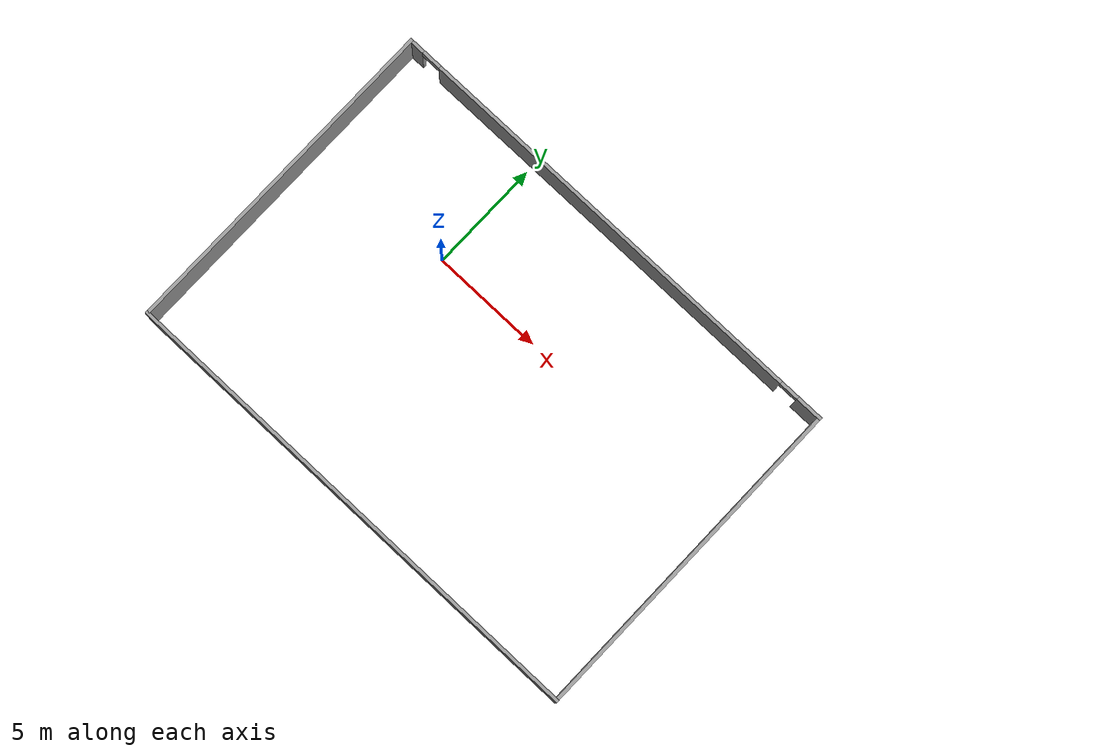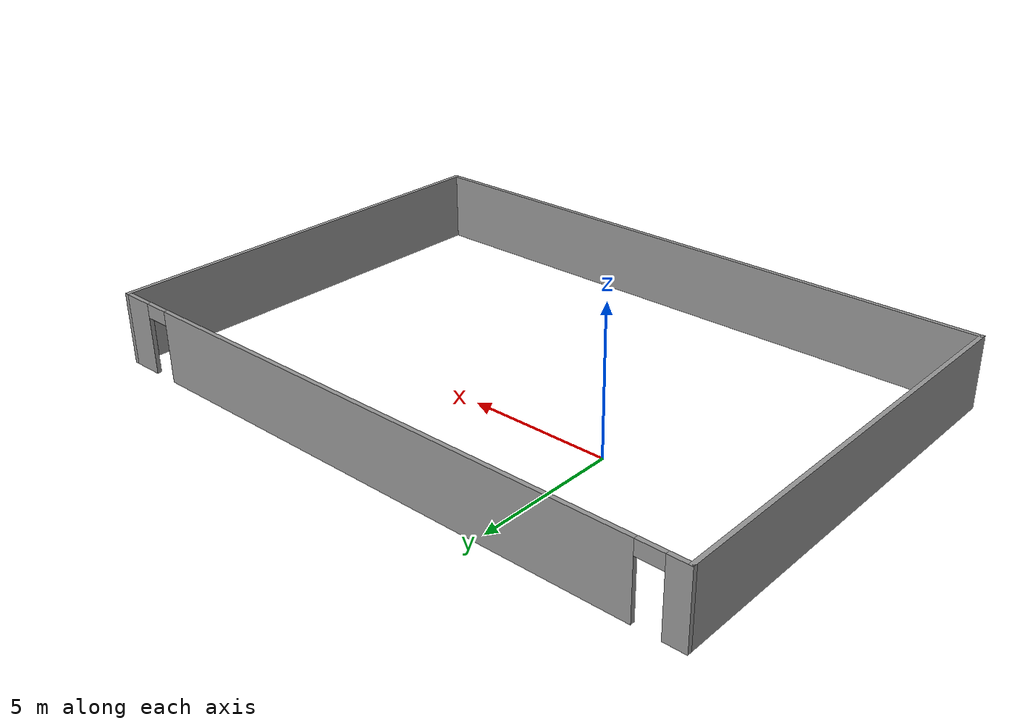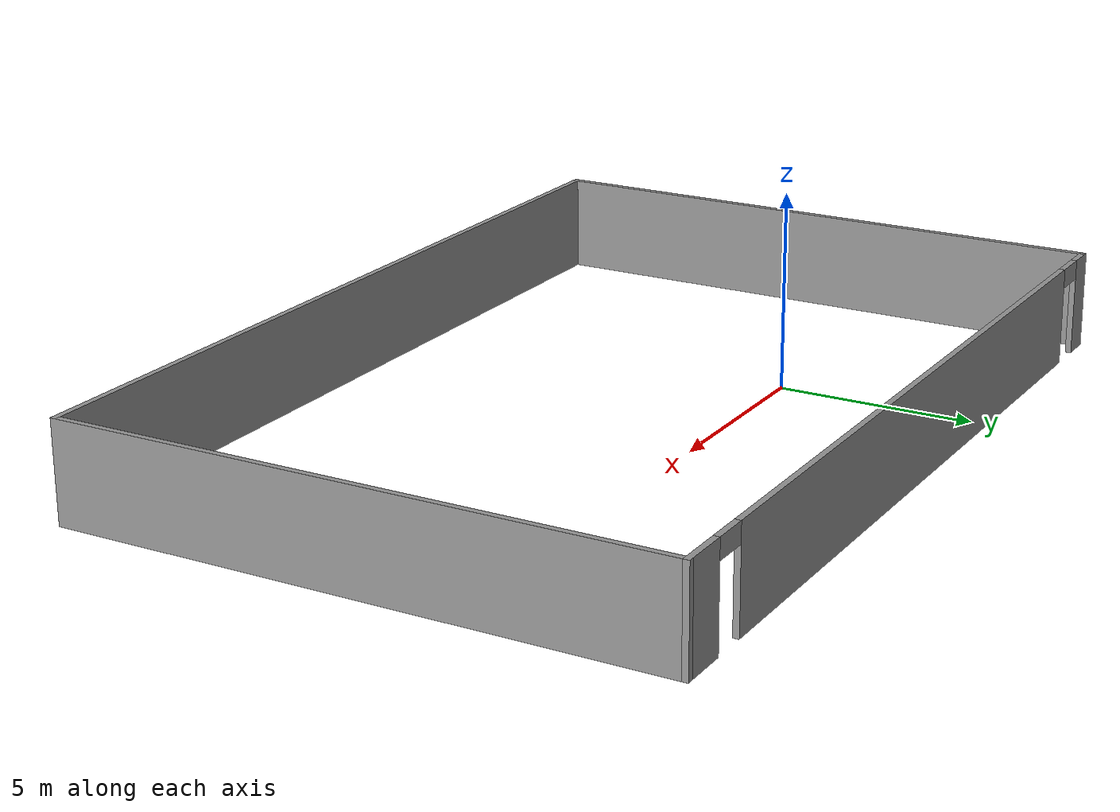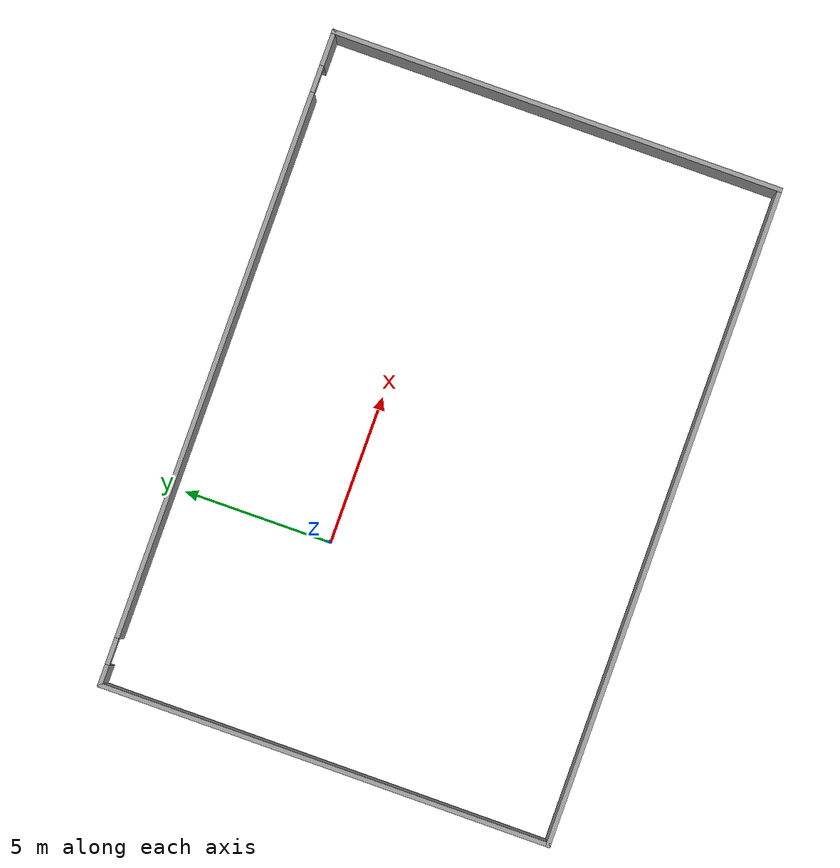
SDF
<?xml version='1.0'?>
<sdf version='1.7'>
  <model name='Building'>
    <pose>4.33491 -2.21957 0 0 -0 0</pose>
    <link name='Wall_6'>
      <collision name='Wall_6_Collision'>
        <geometry>
          <box>
            <size>15.25 0.15 2.5</size>
          </box>
        </geometry>
        <pose>0 0 1.25 0 -0 0</pose>
      </collision>
      <visual name='Wall_6_Visual'>
        <pose>0 0 1.25 0 -0 0</pose>
        <geometry>
          <box>
            <size>15.25 0.15 2.5</size>
          </box>
        </geometry>
        <material>
          <script>
            <uri>file://media/materials/scripts/gazebo.material</uri>
            <name>Gazebo/Grey</name>
          </script>
          <ambient>1 1 1 1</ambient>
        </material>
        <meta>
          <layer>0</layer>
        </meta>
      </visual>
      <pose>-11.05 0 0 0 -0 -1.5708</pose>
    </link>
    <link name='Wall_7'>
      <collision name='Wall_7_Collision'>
        <geometry>
          <box>
            <size>22.25 0.15 2.5</size>
          </box>
        </geometry>
        <pose>0 0 1.25 0 -0 0</pose>
      </collision>
      <visual name='Wall_7_Visual'>
        <pose>0 0 1.25 0 -0 0</pose>
        <geometry>
          <box>
            <size>22.25 0.15 2.5</size>
          </box>
        </geometry>
        <material>
          <script>
            <uri>file://media/materials/scripts/gazebo.material</uri>
            <name>Gazebo/Grey</name>
          </script>
          <ambient>1 1 1 1</ambient>
        </material>
        <meta>
          <layer>0</layer>
        </meta>
      </visual>
      <pose>0 -7.55 0 0 -0 0</pose>
    </link>
    <link name='Wall_8'>
      <collision name='Wall_8_Collision'>
        <geometry>
          <box>
            <size>15.25 0.15 2.5</size>
          </box>
        </geometry>
        <pose>0 0 1.25 0 -0 0</pose>
      </collision>
      <visual name='Wall_8_Visual'>
        <pose>0 0 1.25 0 -0 0</pose>
        <geometry>
          <box>
            <size>15.25 0.15 2.5</size>
          </box>
        </geometry>
        <material>
          <script>
            <uri>file://media/materials/scripts/gazebo.material</uri>
            <name>Gazebo/Grey</name>
          </script>
          <ambient>1 1 1 1</ambient>
        </material>
        <meta>
          <layer>0</layer>
        </meta>
      </visual>
      <pose>11.05 0 0 0 -0 1.5708</pose>
    </link>
    <link name='Wall_9'>
      <pose>0 7.55 0 0 -0 3.14159</pose>
      <visual name='Wall_9_Visual_0'>
        <pose>-10.5102 0 1.25 0 -0 0</pose>
        <geometry>
          <box>
            <size>1.22955 0.15 2.5</size>
          </box>
        </geometry>
        <material>
          <script>
            <uri>file://media/materials/scripts/gazebo.material</uri>
            <name>Gazebo/Grey</name>
          </script>
          <ambient>1 1 1 1</ambient>
        </material>
        <meta>
          <layer>0</layer>
        </meta>
      </visual>
      <collision name='Wall_9_Collision_0'>
        <geometry>
          <box>
            <size>1.22955 0.15 2.5</size>
          </box>
        </geometry>
        <pose>-10.5102 0 1.25 0 -0 0</pose>
      </collision>
      <visual name='Wall_9_Visual_1'>
        <pose>0.236354 0 1.25 0 -0 0</pose>
        <geometry>
          <box>
            <size>18.4636 0.15 2.5</size>
          </box>
        </geometry>
        <material>
          <script>
            <uri>file://media/materials/scripts/gazebo.material</uri>
            <name>Gazebo/Grey</name>
          </script>
          <ambient>1 1 1 1</ambient>
        </material>
        <meta>
          <layer>0</layer>
        </meta>
      </visual>
      <collision name='Wall_9_Collision_1'>
        <geometry>
          <box>
            <size>18.4636 0.15 2.5</size>
          </box>
        </geometry>
        <pose>0.236354 0 1.25 0 -0 0</pose>
      </collision>
      <visual name='Wall_9_Visual_2'>
        <pose>10.7466 0 1.25 0 -0 0</pose>
        <geometry>
          <box>
            <size>0.756838 0.15 2.5</size>
          </box>
        </geometry>
        <material>
          <script>
            <uri>file://media/materials/scripts/gazebo.material</uri>
            <name>Gazebo/Grey</name>
          </script>
          <ambient>1 1 1 1</ambient>
        </material>
        <meta>
          <layer>0</layer>
        </meta>
      </visual>
      <collision name='Wall_9_Collision_2'>
        <geometry>
          <box>
            <size>0.756838 0.15 2.5</size>
          </box>
        </geometry>
        <pose>10.7466 0 1.25 0 -0 0</pose>
      </collision>
      <visual name='Wall_9_Visual_3'>
        <pose>-9.44545 0 2.25 0 -0 0</pose>
        <geometry>
          <box>
            <size>0.9 0.15 0.5</size>
          </box>
        </geometry>
        <material>
          <script>
            <uri>file://media/materials/scripts/gazebo.material</uri>
            <name>Gazebo/Grey</name>
          </script>
          <ambient>1 1 1 1</ambient>
        </material>
        <meta>
          <layer>0</layer>
        </meta>
      </visual>
      <collision name='Wall_9_Collision_3'>
        <geometry>
          <box>
            <size>0.9 0.15 0.5</size>
          </box>
        </geometry>
        <pose>-9.44545 0 2.25 0 -0 0</pose>
      </collision>
      <visual name='Wall_9_Visual_4'>
        <pose>9.91816 0 2.25 0 -0 0</pose>
        <geometry>
          <box>
            <size>0.9 0.15 0.5</size>
          </box>
        </geometry>
        <material>
          <script>
            <uri>file://media/materials/scripts/gazebo.material</uri>
            <name>Gazebo/Grey</name>
          </script>
          <ambient>1 1 1 1</ambient>
        </material>
        <meta>
          <layer>0</layer>
        </meta>
      </visual>
      <collision name='Wall_9_Collision_4'>
        <geometry>
          <box>
            <size>0.9 0.15 0.5</size>
          </box>
        </geometry>
        <pose>9.91816 0 2.25 0 -0 0</pose>
      </collision>
    </link>
    <static>1</static>
  </model>
</sdf>
